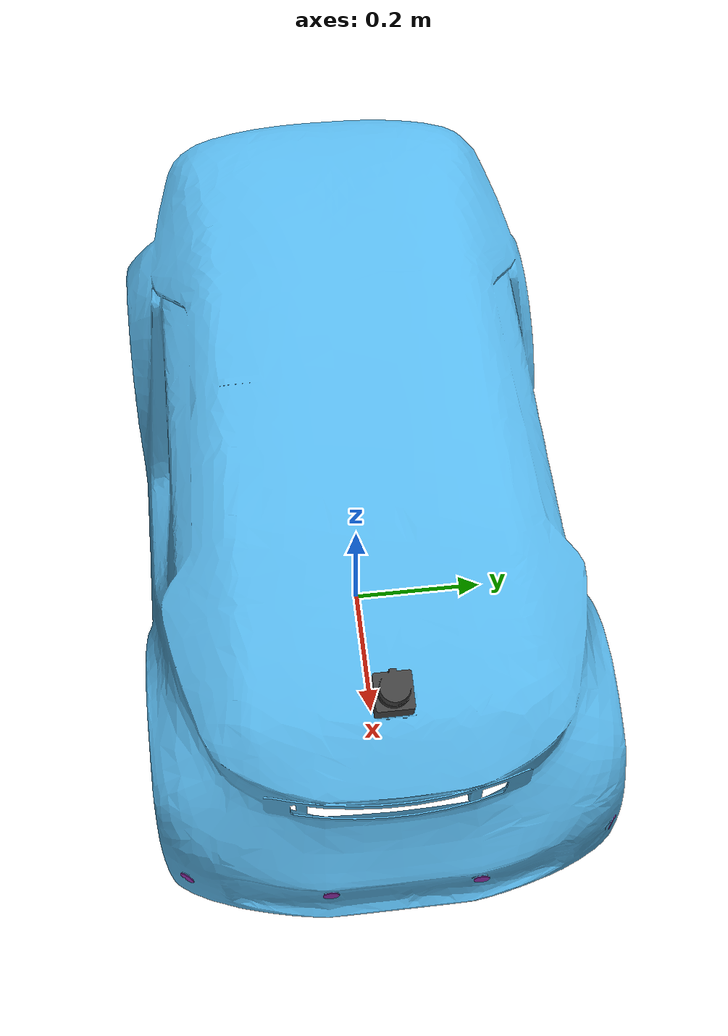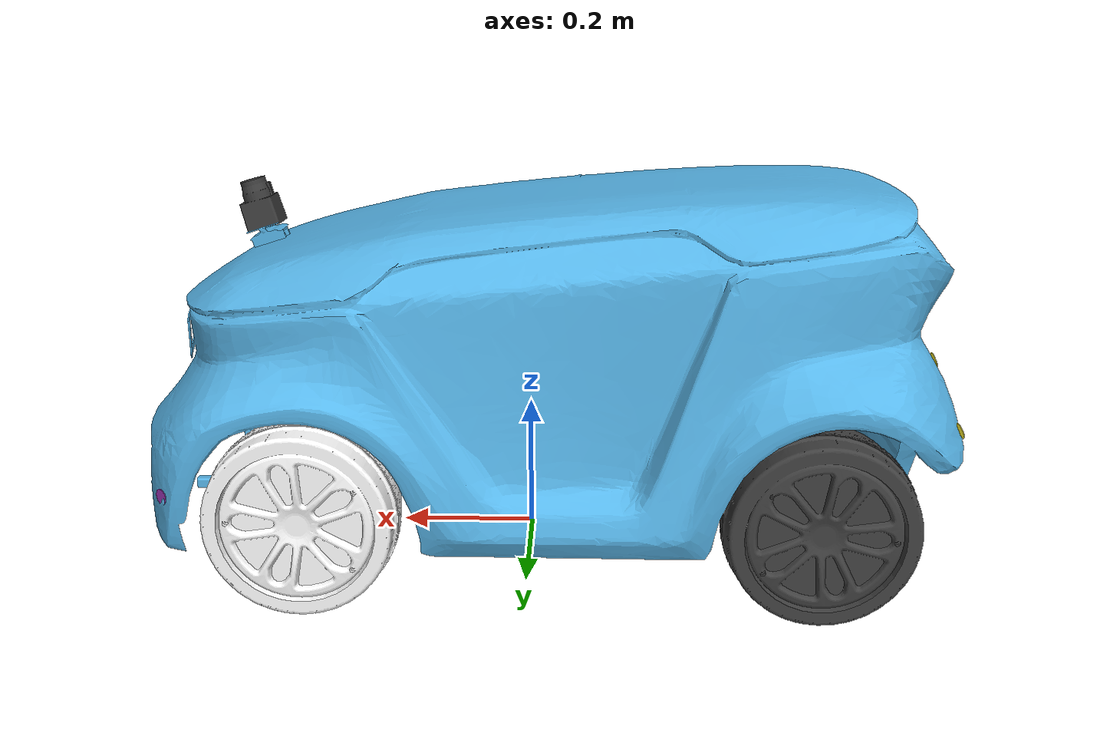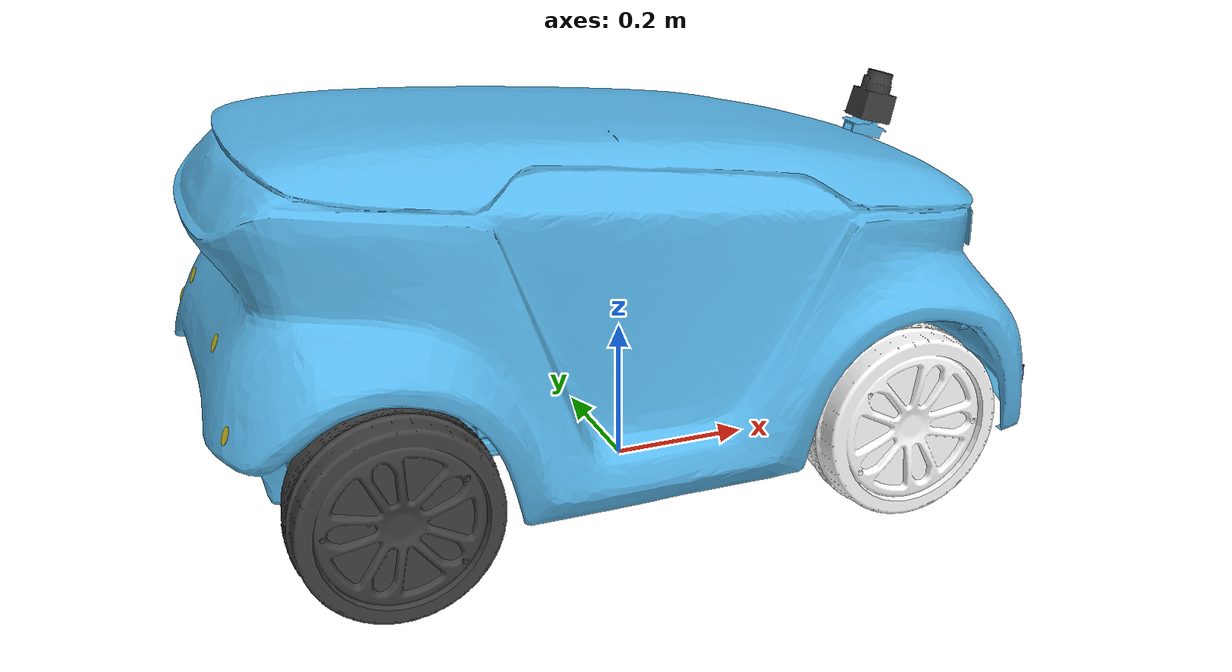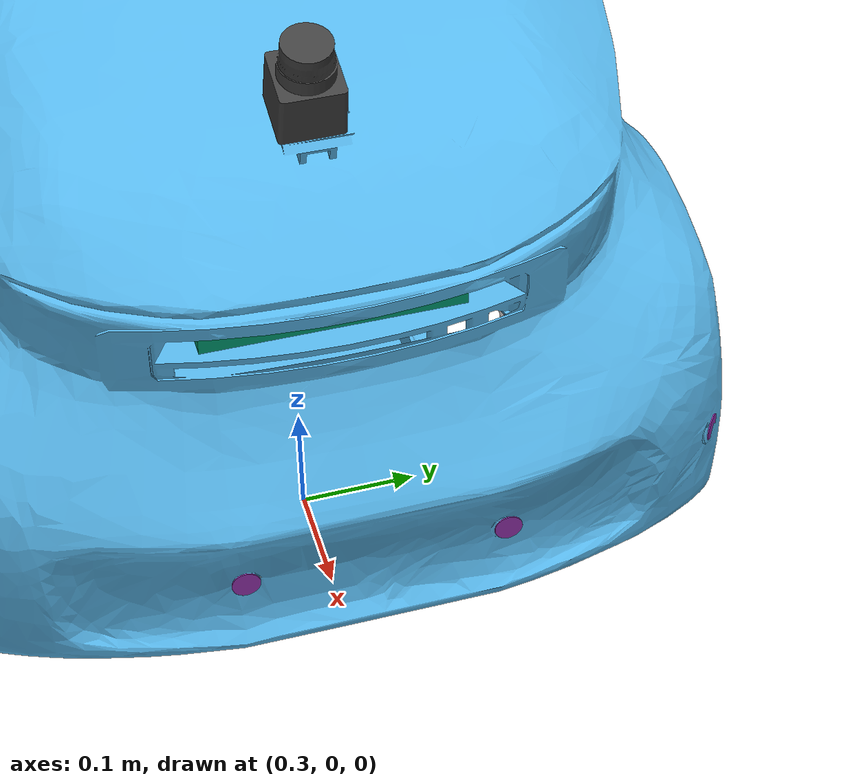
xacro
<?xml version="1.0"?>
<robot name="junior_car"
  xmlns:xacro="http://www.ros.org/wiki/xacro">
  <xacro:include filename="$(find junior_car)/urdf/junior_car.gazebo.xacro" />
  <!-- inertial macros -->
  <xacro:include filename="$(find junior_car)/urdf/inertia.xacro" />
  <!-- add transmissions -->
  <xacro:include filename="$(find junior_car)/urdf/junior_car.transmission.xacro" />

  <link name="footprint">
   </link>

  <link name="base_link">
    <visual>
      <origin xyz="0 -0.02 0.165" rpy="0 0 0" />
      <geometry>
        <mesh filename="package://junior_car/meshes/base_link.STL" />
      </geometry>
      <material name="">
      </material>
    </visual>
    <collision>
      <origin xyz="0 -0.02 0.165" rpy="0 0 0" />
      <geometry>
        <mesh filename="package://junior_car/meshes/base_link.STL"/>
      </geometry>
    </collision>
    <xacro:box_inertial_origin x="${b_height}" y="${b_width}" z="${b_depth}" mass="${b_mass}" origin="0 -0.025 0.2" rpy="0 0 1.5708"/>
  </link>

  <joint name="footprint_joint" type="fixed">
     <parent link="footprint"/>
     <child link="base_link"/>
     <origin xyz="0 0 0.11" rpy="0 0 -1.5709" />
   </joint>

  <link name="hokuyo_sensor">
    <xacro:box_inertial x="${hokuyo_depth}" y="${hokuyo_depth}" z="${hokuyo_width}" mass="${hokuyo_mass}"/>
    <visual>
      <origin xyz="0 0 0" rpy="0 -${pi/2} ${pi}" />
      <geometry>
        <mesh filename="package://junior_car/meshes/hokuyo_sensor.STL" />
      </geometry>
      <material name="">
        <color rgba="0.250980392156863 0.250980392156863 0.250980392156863 1" />
      </material>
    </visual>
    <collision>
      <origin xyz="0 0 0" rpy="0 -${pi/2} ${pi}" />
      <geometry>
        <mesh filename="package://junior_car/meshes/hokuyo_sensor.STL" />
      </geometry>
    </collision>
  </link>

  <link name="fake_laser">
  </link>

  <joint name="hokuyo_link" type="revolute">
    <origin xyz="0 0.4 0.4" rpy="-${pi/12} 0 0" />
    <parent link="base_link" />
    <child link="hokuyo_sensor" />
    <axis xyz="1 0 0" />
    <limit lower="0" upper="0" effort="100" velocity="100" />
  </joint>

  <joint name="fake_laser_joint" type="fixed">
    <origin xyz="0 0.4 0.4" rpy="0 0 0" />
    <parent link="base_link" />
    <child link="fake_laser" />
    <axis xyz="1 0 0" />
  </joint>

  <link name="right_steer_link">
    <inertial>
      <origin xyz="0.045 0.027009 -5.33E-08" rpy="0 0 0" />
      <mass value="0.23" />
      <inertia ixx="0" ixy="0" ixz="0" iyy="0" iyz="0" izz="0" />
    </inertial>
    <visual>
      <origin xyz="0.045 0 0" rpy="0 0 0" />
      <geometry>
        <mesh filename="package://junior_car/meshes/steer_link.STL" />
      </geometry>
      <material name="">
        <color rgba="0.79216 0.81961 0.93333 1" />
      </material>
    </visual>
    <collision>
      <origin xyz="0.045 0 0" rpy="0 0 0" />
      <geometry>
        <mesh filename="package://junior_car/meshes/steer_link.STL" />
      </geometry>
    </collision>
  </link>

  <joint name="right_steer_joint" type="revolute">
    <origin xyz="0.185 0.295 0.01925" rpy="${pi/2} 0 0" />
    <parent link="base_link" />
    <child link="right_steer_link" />
    <axis xyz="0 1 0" />
    <limit lower="-0.52" upper="0.52" effort="1000" velocity="2" />
  </joint>

  <link name="right_steer_wheel">
    <xacro:cylinder_inertial radius="${wheel_radius}" length="${wheel_height}" mass="${wheel_mass}" origin="-0.0388 0 0" rpy="0 1.5708 0" />
    <visual>
      <origin xyz="0 0 0" rpy="0 0 0" />
      <geometry>
        <mesh filename="package://junior_car/meshes/wheel.STL" />
      </geometry>
      <material name="">
        <color rgba="1 1 1 1" />
      </material>
    </visual>
    <collision>
      <origin xyz="0 0 0" rpy="0 0 0" />
      <geometry>
        <mesh filename="package://junior_car/meshes/wheel.STL" />
      </geometry>
    </collision>
  </link>

  <joint name="right_steer_wheel_joint" type="continuous">
    <origin xyz="0.12105 0 0" rpy="${pi/2} 0 0" />
    <parent link="right_steer_link" />
    <child link="right_steer_wheel" />
    <axis xyz="1 0 0" />
  </joint>

  <link name="left_steer_link">
    <inertial>
      <origin xyz="0.012461 -0.027009 7.3683E-10" rpy="0 0 0" />
      <mass value="0.23" />
      <inertia ixx="0" ixy="0" ixz="0" iyy="0" iyz="0" izz="0" />
    </inertial>
    <visual>
      <origin xyz="-0.045 0 0" rpy="0 ${pi} 0" />
      <geometry>
        <mesh filename="package://junior_car/meshes/steer_link.STL" />
      </geometry>
      <material name="">
        <color rgba="0.75294 0 0 1" />
      </material>
    </visual>
    <collision>
      <origin xyz="-0.045 0 0" rpy="0 ${pi} 0" />
      <geometry>
        <mesh filename="package://junior_car/meshes/steer_link.STL" />
      </geometry>
    </collision>
  </link>

  <joint name="left_steer_joint" type="revolute">
    <origin xyz="-0.190 0.295 0.01925" rpy="${pi/2} 0 0"/>
    <parent link="base_link" />
    <child link="left_steer_link" />
    <axis xyz="0 1 0" />
    <limit lower="-0.52" upper="0.52" effort="1000" velocity="2" />
  </joint>

  <link name="left_steer_wheel">
    <xacro:cylinder_inertial radius="${wheel_radius}" length="${wheel_height}" mass="${wheel_mass}" origin="-0.0388 0 0" rpy="0 1.5709 0"/>
    <visual>
      <origin xyz="0 0 0" rpy="0 0 0" />
      <geometry>
        <mesh filename="package://junior_car/meshes/wheel.STL" />
      </geometry>
      <material name="">
        <color rgba="1 1 1 1" />
      </material>
    </visual>
    <collision>
      <origin xyz="0 0 0" rpy="0 0 0" />
      <geometry>
        <mesh filename="package://junior_car/meshes/wheel.STL" />
      </geometry>
    </collision>
  </link>

  <joint name="left_steer_wheel_joint" type="continuous">
    <origin xyz="-0.11605 0 0" rpy="${pi/2} 0 ${pi}" />
    <parent link="left_steer_link" />
    <child link="left_steer_wheel" />
    <axis xyz="1 0 0" />
  </joint>

  <link name="right_drive_wheel">
    <inertial>
      <origin xyz="-0.000354823432737794 7.56040584812268E-06 -7.98274668589727E-10" rpy="0 0 0" />
      <mass value="0.9" />
      <inertia ixx="0" ixy="0" ixz="0" iyy="0" iyz="0" izz="0" />
    </inertial>
    <visual>
      <origin xyz="0 0 0" rpy="0 0 0" />
      <geometry>
        <mesh filename="package://junior_car/meshes/wheel.STL" />
      </geometry>
      <material name="">
        <color rgba="0.250980392156863 0.250980392156863 0.250980392156863 1" />
      </material>
    </visual>
    <collision>
      <origin xyz="0 0 0" rpy="0 0 0" />
      <geometry>
        <mesh filename="package://junior_car/meshes/wheel.STL" />
      </geometry>
    </collision>
  </link>

  <joint name="right_drive_wheel_joint" type="continuous">
    <origin xyz="0.305 -0.39345 0.01345" rpy="0 0 0" />
    <parent link="base_link" />
    <child link="right_drive_wheel" />
    <axis xyz="-1 0 0" />
  </joint>

  <link name="left_drive_wheel">
    <inertial>
      <origin xyz="-0.000354823420264383 9.98625522108387E-07 -2.1355551753921E-06" rpy="0 0 -${pi}" />
      <mass value="0.9" />
      <inertia ixx="0" ixy="0" ixz="0" iyy="0" iyz="0" izz="0" />
    </inertial>
    <visual>
      <origin xyz="0 0 0" rpy="0 0 0" />
      <geometry>
        <mesh filename="package://junior_car/meshes/wheel.STL" />
      </geometry>
      <material name="">
        <color rgba="0.250980392156863 0.250980392156863 0.250980392156863 1" />
      </material>
    </visual>
    <collision>
      <origin xyz="0 0 0" rpy="0 0 0" />
      <geometry>
        <mesh filename="package://junior_car/meshes/wheel.STL" />
      </geometry>
    </collision>
  </link>

  <joint name="left_drive_wheel_joint" type="continuous">
    <origin xyz="-0.305 -0.39345 0.01345" rpy="0.0 ${pi} 0" />
    <parent link="base_link" />
    <child link="left_drive_wheel" />
    <axis xyz="1 0 0" />
  </joint>

  <link name="camera_link">
    <visual>
      <origin rpy="0 0 0" xyz="0 0 0"/>
      <geometry>
        <box size = " ${kinect_depth} ${kinect_width} ${kinect_height}"/>
      </geometry>
    </visual>
    <collision>
      <origin rpy="0 0 0" xyz="0 0 0"/>
      <geometry>
        <box size = " ${kinect_depth} ${kinect_width} ${kinect_height}"/>
      </geometry>
    </collision>
    <xacro:box_inertial x="${kinect_height}" y="${kinect_depth}" z="${kinect_width}" mass="${kinect_mass}"/>
  </link>

  <joint name="camera_joint" type="fixed">
    <parent link="base_link"/>
    <child link="camera_link"/>
  <origin rpy="0 0 1.5709" xyz="0 0.43 0.235"/>
  </joint>

  <!-- L . SONAR 1. The left one -->
  <link name="sonar_link">
    <inertial>
      <origin xyz="0 0 0" rpy="0 0 0" />
      <mass value="0.005" />
      <inertia ixx="0" ixy="0" ixz="0" iyy="0" iyz="0" izz="0" />
    </inertial>
    <visual>
      <origin xyz="0 0 0" rpy="1.5709 0 -0.64" />
      <geometry>
        <cylinder radius="0.011" length="0.0009" />
      </geometry>
    </visual>
    <collision>
      <origin xyz="0 0 0" rpy="1.5709 0 -0.64" />
      <geometry>
        <cylinder radius="0.011" length="0.0009" />
      </geometry>
    </collision>
  </link>

  <joint name="sonar_joint" type="fixed">
    <origin xyz="0.283 0.487 0.057" rpy="0 0 0" />
    <parent link="base_link" />
    <child link="sonar_link" />
    <axis xyz="0 1 0" />
  </joint>

  <!--R. SONAR 2. The right one. -->
  <link name="2sonar_link">
    <inertial>
      <origin xyz="0 0 0" rpy="0 0 0" />
      <mass value="0.005" />
      <inertia ixx="0" ixy="0" ixz="0" iyy="0" iyz="0" izz="0" />
    </inertial>

    <visual>
      <origin xyz="0 0 0" rpy="1.5709 0 0.9" />
      <geometry>
        <cylinder radius="0.011" length="0.0009" />
      </geometry>

    </visual>

    <collision>
      <origin xyz="0 0 0" rpy="1.5709 0 0.9" />
      <geometry>
        <cylinder radius="0.011" length="0.0009" />
      </geometry>
    </collision>
  </link>

  <joint name="2sonar_joint" type="fixed">
    <origin xyz="-0.3 0.473 0.055" rpy="0 0 0" />
    <parent link="base_link" />
    <child link="2sonar_link" />
    <axis xyz="0 1 0" />
  </joint>

  <!-- CL. SONAR 3, The center left one. -->
  <link name="3sonar_link">
    <inertial>
      <origin xyz="0 0 0" rpy="0 0 0" />
      <mass value="0.005" />
      <inertia ixx="0" ixy="0" ixz="0" iyy="0" iyz="0" izz="0" />
    </inertial>
    <visual>
      <origin xyz="0 0 0" rpy="1.5709 0 0" />
      <geometry>
        <cylinder radius="0.011" length="0.0009" />
      </geometry>
    </visual>
    <collision>
      <origin xyz="0 0 0" rpy="1.5709 0 0" />
      <geometry>
        <cylinder radius="0.011" length="0.0009" />
      </geometry>
    </collision>
  </link>

  <joint name="3sonar_joint" type="fixed">
    <origin xyz="0.0931 0.532 0.055" rpy="0 0 0" />
    <parent link="base_link" />
    <child link="3sonar_link" />
    <axis xyz="0 1 0" />
  </joint>

  <!-- CR. SONAR 4. The center right one -->
  <link name="4sonar_link">
    <inertial>
      <origin xyz="0 0 0" rpy="0 0 0" />
      <mass value="0.005" />
      <inertia ixx="0" ixy="0" ixz="0" iyy="0" iyz="0" izz="0" />
    </inertial>
    <visual>
      <origin xyz="0 0 0" rpy="1.5709 0 0" />
      <geometry>
        <cylinder radius="0.011" length="0.0009" />
      </geometry>
    </visual>
    <collision>
      <origin xyz="0 0 0" rpy="1.5709 0 0" />
      <geometry>
        <cylinder radius="0.011" length="0.0009" />
      </geometry>
    </collision>
  </link>

  <joint name="4sonar_joint" type="fixed">
    <origin xyz="-0.110 0.532 0.055" rpy="0 0 0" />
    <parent link="base_link" />
    <child link="4sonar_link" />
    <axis xyz="0 1 0" />
  </joint>

  <!-- IMU LINK AND SENSOR -->
  <link name="imu_link">
    <inertial>
      <origin xyz="0 0 0" rpy="0 0 0" />
      <mass value="0.005" />
      <inertia ixx="0" ixy="0" ixz="0" iyy="0" iyz="0" izz="0" />
    </inertial>
    <visual>
      <origin xyz="0 0 0" rpy="0 0 0" />
      <geometry>
        <box size="0.015 0.015 0.015" />
      </geometry>
    </visual>
    <collision>
      <origin xyz="0 0 0" rpy="0 0 0" />
      <geometry>
        <box size="0.015 0.015 0.015" />
      </geometry>
    </collision>
  </link>

  <joint name="imu_joint" type="fixed">
    <origin xyz="0 -0.4 0.35" rpy="0 0 0" />
    <parent link="base_link" />
    <child link="imu_link" />
    <axis xyz="0 0 0" />
  </joint>

  <link name="r1_sonar_link">
    <inertial>
      <origin xyz="0 0 0" rpy="0 0 0" />
      <mass value="0.005" />
      <inertia ixx="0" ixy="0" ixz="0" iyy="0" iyz="0" izz="0" />
    </inertial>
    <visual>
      <origin xyz="0 0 0" rpy="1.5709 0 0" />
      <geometry>
        <cylinder radius="0.011" length="0.0009" />
      </geometry>
    </visual>
    <collision>
      <origin xyz="0 0 0" rpy="1.5709 0 0" />
      <geometry>
        <cylinder radius="0.011" length="0.0009" />
      </geometry>
    </collision>
  </link>

  <joint name="r1_sonar_joint" type="fixed">
    <origin xyz="0.127 -0.567 0.2" rpy="-0.3857178 0 0" />
    <parent link="base_link" />
    <child link="r1_sonar_link" />
    <axis xyz="0 1 0" />
  </joint>

  <link name="r2_sonar_link">
    <inertial>
      <origin xyz="0 0 0" rpy="0 0 0" />
      <mass value="0.005" />
      <inertia ixx="0" ixy="0" ixz="0" iyy="0" iyz="0" izz="0" />
    </inertial>
    <visual>
      <origin xyz="0 0 0" rpy="1.5709 0 0" />
      <geometry>
        <cylinder radius="0.011" length="0.0009" />
      </geometry>
    </visual>
    <collision>
      <origin xyz="0 0 0" rpy="1.5709 0 0" />
      <geometry>
        <cylinder radius="0.011" length="0.0009" />
      </geometry>
    </collision>
  </link>

  <joint name="r2_sonar_joint" type="fixed">
    <origin xyz="-0.127 -0.567 0.2" rpy="-0.3857178 0 0" />
    <parent link="base_link" />
    <child link="r2_sonar_link" />
    <axis xyz="0 1 0" />
  </joint>

  <link name="r3_sonar_link">
    <inertial>
      <origin xyz="0 0 0" rpy="0 0 0" />
      <mass value="0.005" />
      <inertia ixx="0" ixy="0" ixz="0" iyy="0" iyz="0" izz="0" />
    </inertial>
    <visual>
      <origin xyz="0 0 0" rpy="1.5709 0 0" />
      <geometry>
        <cylinder radius="0.011" length="0.0009" />
      </geometry>
    </visual>
    <collision>
      <origin xyz="0 0 0" rpy="1.5709 0 0" />
      <geometry>
        <cylinder radius="0.011" length="0.0009" />
      </geometry>
    </collision>
  </link>

  <joint name="r3_sonar_joint" type="fixed">
    <origin xyz="0.247 -0.575 0.135" rpy="-0.3857178 0 0.0623599" />
    <parent link="base_link" />
    <child link="r3_sonar_link" />
    <axis xyz="0 1 0" />
  </joint>

  <link name="r4_sonar_link">
    <inertial>
      <origin xyz="0 0 0" rpy="0 0 0" />
      <mass value="0.005" />
      <inertia ixx="0" ixy="0" ixz="0" iyy="0" iyz="0" izz="0" />
    </inertial>
    <visual>
      <origin xyz="0 0 0" rpy="1.5709 0 0" />
      <geometry>
        <cylinder radius="0.011" length="0.0009" />
      </geometry>
    </visual>
    <collision>
      <origin xyz="0 0 0" rpy="1.5709 0 0" />
      <geometry>
        <cylinder radius="0.011" length="0.0009" />
      </geometry>
    </collision>
  </link>

  <joint name="r4_sonar_joint" type="fixed">
    <origin xyz="-0.235 -0.577 0.135" rpy="-0.3857178 0 0.0623599" />
    <parent link="base_link" />
    <child link="r4_sonar_link" />
    <axis xyz="0 1 0" />
  </joint>

  <xacro:junior_transmission/>
</robot>

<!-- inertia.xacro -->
<!-- adopted from https://github.com/uos/uos_tools/blob/fuerte/uos_common_urdf/common.xacro -->
<robot xmlns:xacro="http://www.ros.org/wiki/xacro">
  <property name="M_PI" value="3.1415926535897931" />

  <xacro:property name="hokuyo_mass" value="0.16"/>
  <xacro:property name="hokuyo_height" value="0.05"/>
  <xacro:property name="hokuyo_depth" value="0.05"/>
  <xacro:property name="hokuyo_width" value="0.07"/>

  <xacro:property name="kinect_height" value="0.035"/>
  <xacro:property name="kinect_mass" value="0.45"/>
  <xacro:property name="kinect_width" value="0.20"/>
  <xacro:property name="kinect_depth" value="0.05"/>

  <xacro:property name="b_height" value="1.112"/>
  <xacro:property name="b_width" value="0.65"/>
  <xacro:property name="b_depth" value="0.35"/>
  <xacro:property name="b_mass" value="38.83"/>

  <xacro:property name="wheel_mass" value="0.9"/>
  <xacro:property name="wheel_height" value="0.11"/>
  <xacro:property name="wheel_radius" value="0.13"/>

  <!-- #################### versions without origin #################### -->
  <xacro:macro name="sphere_inertial" params="radius mass">
    <inertial>
      <mass value="${mass}" />
      <origin xyz="0 0 0" />
      <inertia ixx="${0.4 * mass * radius * radius}" ixy="0.0" ixz="0.0" iyy="${0.4 * mass * radius * radius}" iyz="0.0" izz="${0.4 * mass * radius * radius}" />
    </inertial>
  </xacro:macro>

  <xacro:macro name="cylinder_inertial" params="radius length mass origin rpy">
    <inertial>
      <mass value="${mass}" />
      <origin xyz="${origin}" rpy="${rpy}" />
      <inertia ixx="${0.0833333 * mass * (3 * radius * radius + length * length)}" ixy="0.0" ixz="0.0" iyy="${0.0833333 * mass * (3 * radius * radius + length * length)}" iyz="0.0" izz="${0.5 * mass * radius * radius}" />
    </inertial>
  </xacro:macro>

  <xacro:macro name="box_inertial" params="x y z mass">
    <inertial>
      <mass value="${mass}" />
      <origin xyz="0 0 0" />
      <inertia ixx="${0.0833333 * mass * (y*y + z*z)}" ixy="0.0" ixz="0.0" iyy="${0.0833333 * mass * (x*x + z*z)}" iyz="0.0" izz="${0.0833333 * mass * (x*x + y*y)}" />
    </inertial>
  </xacro:macro>

  <!-- #################### versions with origin #################### -->
  <xacro:macro name="sphere_inertial_with_origin" params="radius mass *origin">
    <inertial>
      <mass value="${mass}" />
      <insert_block name="origin" />
      <inertia ixx="${0.4 * mass * radius * radius}" ixy="0.0" ixz="0.0" iyy="${0.4 * mass * radius * radius}" iyz="0.0" izz="${0.4 * mass * radius * radius}" />
    </inertial>
  </xacro:macro>

  <xacro:macro name="cylinder_inertial_with_origin" params="radius length mass *origin">
    <inertial>
      <mass value="${mass}" />
      <insert_block name="origin" />
      <inertia ixx="${0.0833333 * mass * (3 * radius * radius + length * length)}" ixy="0.0" ixz="0.0" iyy="${0.0833333 * mass * (3 * radius * radius + length * length)}" iyz="0.0" izz="${0.5 * mass * radius * radius}" />
    </inertial>
  </xacro:macro>

  <xacro:macro name="box_inertial_with_origin" params="x y z mass *origin">
    <inertial>
      <mass value="${mass}" />
      <insert_block name="origin" />
      <inertia ixx="${0.0833333 * mass * (y*y + z*z)}" ixy="0.0" ixz="0.0" iyy="${0.0833333 * mass * (x*x + z*z)}" iyz="0.0" izz="${0.0833333 * mass * (x*x + y*y)}" />
    </inertial>
  </xacro:macro>

  <xacro:macro name="box_inertial_origin" params="x y z mass origin rpy">
    <inertial>
      <mass value="${mass}" />
      <origin xyz="${origin}" rpy= "${rpy}" />
      <inertia ixx="${0.0833333 * mass * (y*y + z*z)}" ixy="0.0" ixz="0.0" iyy="${0.0833333 * mass * (x*x + z*z)}" iyz="0.0" izz="${0.0833333 * mass * (x*x + y*y)}" />
    </inertial>
  </xacro:macro>

</robot>
